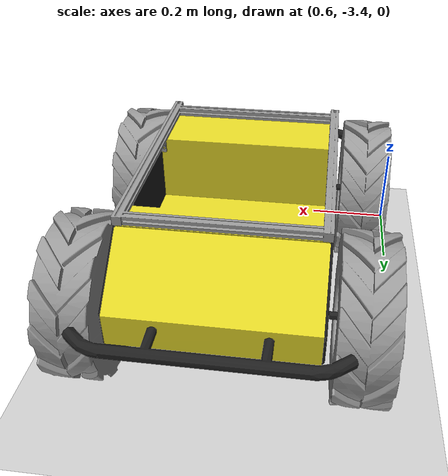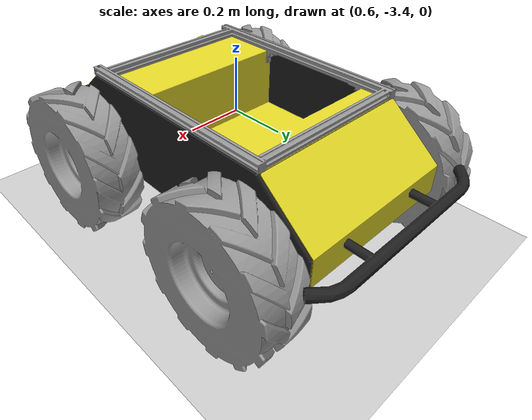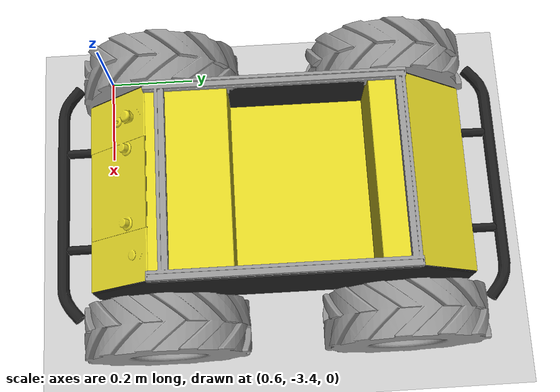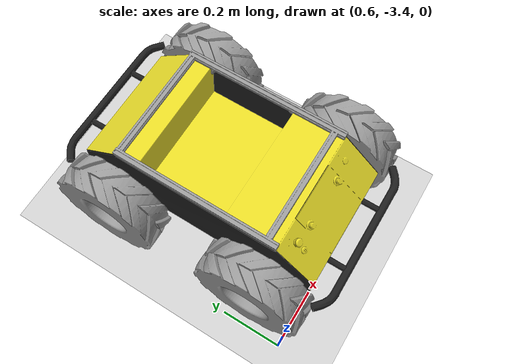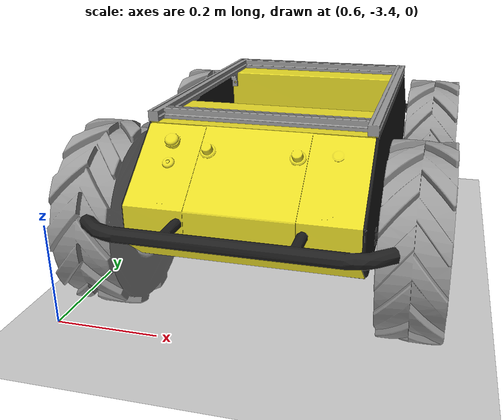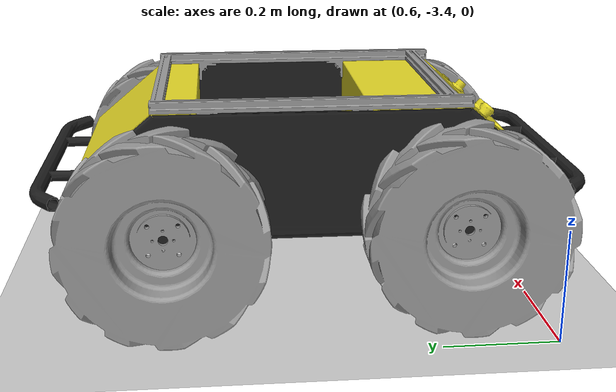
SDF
<sdf version="1.5">
 <world name="default">
  <light name="sun" type="directional">
   <pose>0 0 10 0 -0 0</pose>
   <diffuse>0.8 0.8 0.8 1</diffuse>
   <specular>0.2 0.2 0.2 1</specular>
   <attenuation>
    <range>1000</range>
    <constant>0.9</constant>
    <linear>0.01</linear>
    <quadratic>0.001</quadratic>
   </attenuation>
   <direction>-0.5 0.1 -0.9</direction>
  </light>
  <model name="ground_plane">
   <static>1</static>
   <link name="link">
    <collision name="collision">
     <geometry><plane><normal>0 0 1</normal><size>100 100</size></plane></geometry>
     <surface><friction><ode><mu>100</mu><mu2>50</mu2></ode></friction></surface>
    </collision>
    <visual name="visual">
     <cast_shadows>0</cast_shadows>
     <geometry><plane><normal>0 0 1</normal><size>100 100</size></plane></geometry>
     <material>
      <script><uri>file://media/materials/scripts/gazebo.material</uri><name>Gazebo/Grey</name></script>
     </material>
    </visual>
    <velocity_decay><linear>0</linear><angular>0</angular></velocity_decay>
   </link>
  </model>
  <physics type="ode">
   <max_step_size>0.001</max_step_size>
   <real_time_factor>1</real_time_factor>
   <real_time_update_rate>1000</real_time_update_rate>
   <gravity>0 0 -9.8</gravity>
  </physics>
  <scene><ambient>0.4 0.4 0.4 1</ambient><background>0.7 0.7 0.7 1</background><shadows>1</shadows></scene>
  <audio><device>default</device></audio>
  <spherical_coordinates>
   <surface_model>EARTH_WGS84</surface_model>
   <latitude_deg>0</latitude_deg>
   <longitude_deg>0</longitude_deg>
   <elevation>0</elevation>
   <heading_deg>0</heading_deg>
  </spherical_coordinates>
  <model name="husky">
   <pose>0.966255 -2.99889 0.142755 -7e-06 4e-06 1.56734</pose>
   <link name="base_link">
    <collision name="collision">
     <pose>0 0 0.1 0 -0 0</pose>
     <geometry><box><size>1.0074 0.5709 0.2675</size></box></geometry>
    </collision>
    <inertial>
     <mass>33.855</mass>
     <pose>-0.0856132 -0.000839955 0.238145 0 -0 0</pose>
     <inertia>
      <ixx>2.2343</ixx>
      <ixy>-0.023642</ixy>
      <ixz>0.275174</ixz>
      <iyy>3.42518</iyy>
      <iyz>0.00239624</iyz>
      <izz>2.1241</izz>
     </inertia>
    </inertial>
    <visual name="base">
     <geometry><mesh><uri>model://husky/meshes/base_link.stl</uri></mesh></geometry>
     <material><script><name>Gazebo/FlatBlack</name><uri>__default__</uri></script></material>
    </visual>
    <visual name="top_plate">
     <geometry><mesh><uri>model://husky/meshes/top_plate.stl</uri></mesh></geometry>
     <material><script><name>Gazebo/Yellow</name><uri>__default__</uri></script></material>
    </visual>
    <visual name="front_bumper">
     <pose>0.47 0 0.091 0 -0 0</pose>
     <geometry><mesh><uri>model://husky/meshes/bumper.stl</uri></mesh></geometry>
     <material><script><name>Gazebo/FlatBlack</name><uri>__default__</uri></script></material>
    </visual>
    <visual name="rear_bumper">
     <pose>-0.47 0 0.091 0 -0 3.141</pose>
     <geometry><mesh><uri>model://husky/meshes/bumper.stl</uri></mesh></geometry>
     <material><script><name>Gazebo/FlatBlack</name><uri>__default__</uri></script></material>
    </visual>
    <visual name="user_rail">
     <pose>0.272 0 0.245 0 -0 0</pose>
     <geometry><mesh><uri>model://husky/meshes/user_rail.stl</uri></mesh></geometry>
     <material><script><name>Gazebo/Grey</name><uri>__default__</uri></script></material>
    </visual>
    <velocity_decay><linear>0</linear><angular>0</angular></velocity_decay>
   </link>
   <link name="back_left_wheel">
    <pose>-0.256 0.285475 0.035 0 -0 0</pose>
    <inertial>
     <mass>2.6357</mass>
     <inertia>
      <ixx>0.0246688</ixx>
      <ixy>0</ixy>
      <ixz>0</ixz>
      <iyy>0.0246688</iyy>
      <iyz>0</iyz>
      <izz>0.0441058</izz>
     </inertia>
    </inertial>
    <collision name="back_left_wheel_collision">
     <pose>0 0 0 -1.5707 0 0</pose>
     <geometry><cylinder><radius>0.17775</radius><length>0.1143</length></cylinder></geometry>
     <surface>
      <friction><ode><mu>100000</mu><mu2>100000</mu2><slip1>0</slip1><slip2>0</slip2></ode></friction>
     </surface>
    </collision>
    <visual name="back_left_wheel">
     <pose>0 0 0 -3.14159 0 0</pose>
     <geometry><mesh><uri>model://husky/meshes/wheel.stl</uri></mesh></geometry>
     <material><script><name>Gazebo/Grey</name><uri>__default__</uri></script></material>
    </visual>
    <velocity_decay><linear>0</linear><angular>0</angular></velocity_decay>
   </link>
   <joint name="back_left_joint" type="revolute">
    <parent>base_link</parent>
    <child>back_left_wheel</child>
    <axis>
     <xyz>0 1 0</xyz>
     <use_parent_model_frame>1</use_parent_model_frame>
     <limit><lower>-1e+16</lower><upper>1e+16</upper></limit>
     <dynamics><spring_reference>0</spring_reference><spring_stiffness>0</spring_stiffness></dynamics>
    </axis>
    <physics><ode><limit><cfm>0</cfm><erp>0.9</erp></limit></ode></physics>
   </joint>
   <link name="back_right_wheel">
    <pose>-0.256 -0.285475 0.035 0 -0 0</pose>
    <inertial>
     <mass>2.6357</mass>
     <inertia>
      <ixx>0.0246688</ixx>
      <ixy>0</ixy>
      <ixz>0</ixz>
      <iyy>0.0246688</iyy>
      <iyz>0</iyz>
      <izz>0.0441058</izz>
     </inertia>
    </inertial>
    <collision name="back_right_wheel_collision">
     <pose>0 0 0 -1.5707 0 0</pose>
     <geometry><cylinder><radius>0.17775</radius><length>0.1143</length></cylinder></geometry>
     <surface>
      <friction><ode><mu>100000</mu><mu2>100000</mu2><slip1>0</slip1><slip2>0</slip2></ode></friction>
     </surface>
    </collision>
    <visual name="back_right_wheel">
     <pose>0 0 0 -3.14159 0 0</pose>
     <geometry><mesh><uri>model://husky/meshes/wheel.stl</uri></mesh></geometry>
     <material><script><name>Gazebo/Grey</name><uri>__default__</uri></script></material>
    </visual>
    <velocity_decay><linear>0</linear><angular>0</angular></velocity_decay>
   </link>
   <joint name="back_right_joint" type="revolute">
    <parent>base_link</parent>
    <child>back_right_wheel</child>
    <axis>
     <xyz>0 1 0</xyz>
     <use_parent_model_frame>1</use_parent_model_frame>
     <limit><lower>-1e+16</lower><upper>1e+16</upper></limit>
     <dynamics><spring_reference>0</spring_reference><spring_stiffness>0</spring_stiffness></dynamics>
    </axis>
    <physics><ode><limit><cfm>0</cfm><erp>0.9</erp></limit></ode></physics>
   </joint>
   <link name="front_left_wheel">
    <pose>0.256 0.285475 0.035 0 -0 0</pose>
    <inertial>
     <mass>2.6357</mass>
     <inertia>
      <ixx>0.0246688</ixx>
      <ixy>0</ixy>
      <ixz>0</ixz>
      <iyy>0.0246688</iyy>
      <iyz>0</iyz>
      <izz>0.0441058</izz>
     </inertia>
    </inertial>
    <collision name="front_left_wheel_collision">
     <pose>0 0 0 -1.5707 0 0</pose>
     <geometry><cylinder><radius>0.17775</radius><length>0.1143</length></cylinder></geometry>
     <surface>
      <friction><ode><mu>100000</mu><mu2>100000</mu2><slip1>0</slip1><slip2>0</slip2></ode></friction>
     </surface>
    </collision>
    <visual name="front_left_wheel">
     <pose>0 0 0 -3.14159 0 0</pose>
     <geometry><mesh><uri>model://husky/meshes/wheel.stl</uri></mesh></geometry>
     <material><script><name>Gazebo/Grey</name><uri>__default__</uri></script></material>
    </visual>
    <velocity_decay><linear>0</linear><angular>0</angular></velocity_decay>
   </link>
   <joint name="front_left_joint" type="revolute">
    <parent>base_link</parent>
    <child>front_left_wheel</child>
    <axis>
     <xyz>0 1 0</xyz>
     <use_parent_model_frame>1</use_parent_model_frame>
     <limit><lower>-1e+16</lower><upper>1e+16</upper></limit>
     <dynamics><spring_reference>0</spring_reference><spring_stiffness>0</spring_stiffness></dynamics>
    </axis>
    <physics><ode><limit><cfm>0</cfm><erp>0.9</erp></limit></ode></physics>
   </joint>
   <link name="front_right_wheel">
    <pose>0.256 -0.285475 0.035 0 -0 0</pose>
    <inertial>
     <mass>2.6357</mass>
     <inertia>
      <ixx>0.0246688</ixx>
      <ixy>0</ixy>
      <ixz>0</ixz>
      <iyy>0.0246688</iyy>
      <iyz>0</iyz>
      <izz>0.0441058</izz>
     </inertia>
    </inertial>
    <collision name="front_right_wheel_collision">
     <pose>0 0 0 -1.5707 0 0</pose>
     <geometry><cylinder><radius>0.17775</radius><length>0.1143</length></cylinder></geometry>
     <surface>
      <friction><ode><mu>100000</mu><mu2>100000</mu2><slip1>0</slip1><slip2>0</slip2></ode></friction>
     </surface>
    </collision>
    <visual name="front_right_wheel">
     <pose>0 0 0 -3.14159 0 0</pose>
     <geometry><mesh><uri>model://husky/meshes/wheel.stl</uri></mesh></geometry>
     <material><script><name>Gazebo/Grey</name><uri>__default__</uri></script></material>
    </visual>
    <velocity_decay><linear>0</linear><angular>0</angular></velocity_decay>
   </link>
   <joint name="front_right_joint" type="revolute">
    <parent>base_link</parent>
    <child>front_right_wheel</child>
    <axis>
     <xyz>0 1 0</xyz>
     <use_parent_model_frame>1</use_parent_model_frame>
     <limit><lower>-1e+16</lower><upper>1e+16</upper></limit>
     <dynamics><spring_reference>0</spring_reference><spring_stiffness>0</spring_stiffness></dynamics>
    </axis>
    <physics><ode><limit><cfm>0</cfm><erp>0.9</erp></limit></ode></physics>
   </joint>
   <plugin name="husky_plugin" filename="libhusky_ros_plugin.so"/>
  </model>
 </world>
</sdf>
